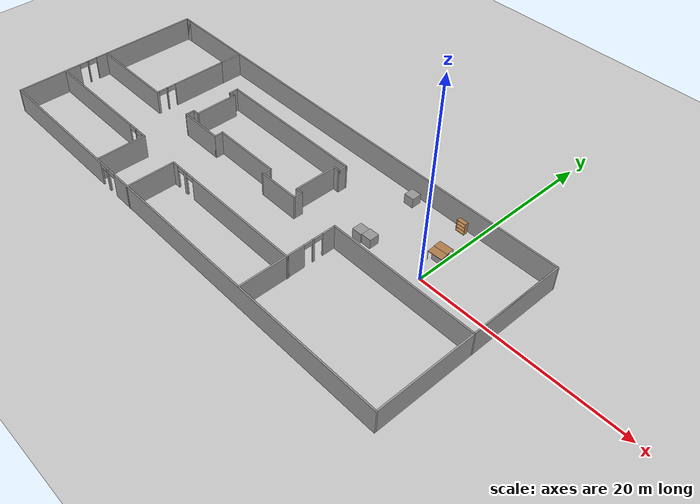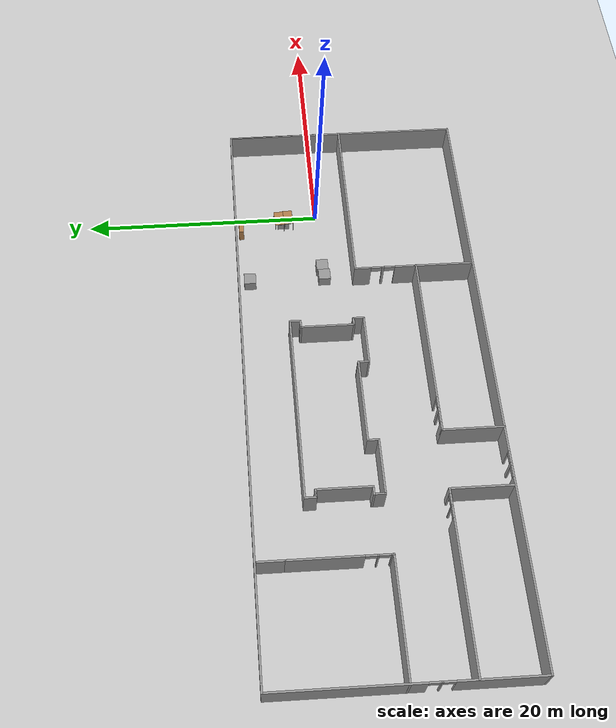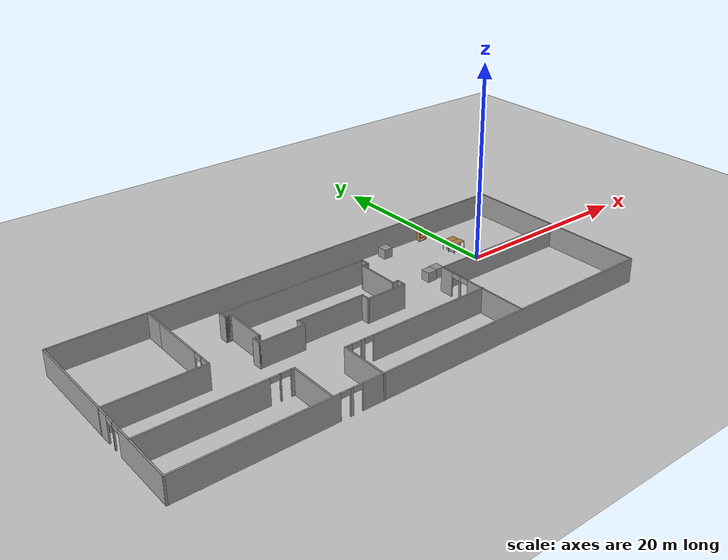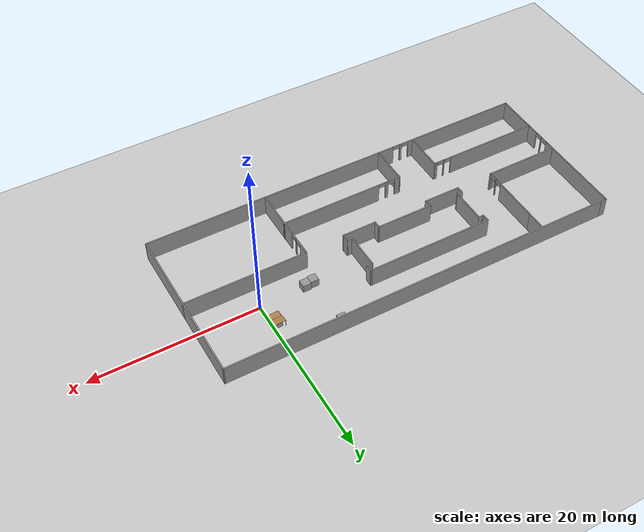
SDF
<sdf version="1.6">
 <world name="default">
  <model name="ground_plane">
   <static>1</static>
   <link name="link">
    <collision name="collision">
     <geometry><plane><normal>0 0 1</normal><size>100 100</size></plane></geometry>
     <surface><friction><ode><mu>100</mu><mu2>50</mu2></ode></friction></surface>
    </collision>
    <visual name="visual">
     <cast_shadows>0</cast_shadows>
     <geometry><plane><normal>0 0 1</normal><size>100 100</size></plane></geometry>
     <material>
      <script><uri>file://media/materials/scripts/gazebo.material</uri><name>Gazebo/Grey</name></script>
     </material>
    </visual>
   </link>
  </model>
  <model name="table_7">
   <static>0</static>
   <link name="link">
    <collision name="surface">
     <pose>0 0 1 0 -0 0</pose>
     <geometry><box><size>1.5 0.8 0.03</size></box></geometry>
     <surface><friction><ode><mu>0.6</mu><mu2>0.6</mu2></ode></friction></surface>
    </collision>
    <visual name="visual1">
     <pose>0 0 1 0 -0 0</pose>
     <geometry><box><size>1.4 0.8 0.04</size></box></geometry>
     <material>
      <script><uri>file://media/materials/scripts/gazebo.material</uri><name>Gazebo/Wood</name></script>
     </material>
    </visual>
    <collision name="front_left_leg">
     <pose>0.68 0.38 0.5 0 -0 0</pose>
     <geometry><cylinder><radius>0.02</radius><length>1</length></cylinder></geometry>
    </collision>
    <visual name="front_left_leg">
     <pose>0.68 0.38 0.5 0 -0 0</pose>
     <geometry><cylinder><radius>0.02</radius><length>1</length></cylinder></geometry>
     <material>
      <script><uri>file://media/materials/scripts/gazebo.material</uri><name>Gazebo/Grey</name></script>
     </material>
    </visual>
    <collision name="front_right_leg">
     <pose>0.68 -0.38 0.5 0 -0 0</pose>
     <geometry><cylinder><radius>0.02</radius><length>1</length></cylinder></geometry>
    </collision>
    <visual name="front_right_leg">
     <pose>0.68 -0.38 0.5 0 -0 0</pose>
     <geometry><cylinder><radius>0.02</radius><length>1</length></cylinder></geometry>
     <material>
      <script><uri>file://media/materials/scripts/gazebo.material</uri><name>Gazebo/Grey</name></script>
     </material>
    </visual>
    <collision name="back_right_leg">
     <pose>-0.68 -0.38 0.5 0 -0 0</pose>
     <geometry><cylinder><radius>0.02</radius><length>1</length></cylinder></geometry>
    </collision>
    <visual name="back_right_leg">
     <pose>-0.68 -0.38 0.5 0 -0 0</pose>
     <geometry><cylinder><radius>0.02</radius><length>1</length></cylinder></geometry>
     <material>
      <script><uri>file://media/materials/scripts/gazebo.material</uri><name>Gazebo/Grey</name></script>
     </material>
    </visual>
    <collision name="back_left_leg">
     <pose>-0.68 0.38 0.5 0 -0 0</pose>
     <geometry><cylinder><radius>0.02</radius><length>1</length></cylinder></geometry>
    </collision>
    <visual name="back_left_leg">
     <pose>-0.68 0.38 0.5 0 -0 0</pose>
     <geometry><cylinder><radius>0.02</radius><length>1</length></cylinder></geometry>
     <material>
      <script><uri>file://media/materials/scripts/gazebo.material</uri><name>Gazebo/Grey</name></script>
     </material>
    </visual>
    <inertial>
     <inertia><ixx>1</ixx><ixy>0</ixy><ixz>0</ixz><iyy>1</iyy><iyz>0</iyz><izz>1</izz></inertia>
     <mass>1</mass>
    </inertial>
   </link>
   <pose>-0.539841 3.25305 0.014986 0 9e-06 0.054108</pose>
  </model>
  <model name="table_7_clone">
   <static>0</static>
   <link name="link">
    <collision name="surface">
     <pose>0 0 1 0 -0 0</pose>
     <geometry><box><size>1.5 0.8 0.03</size></box></geometry>
     <surface><friction><ode><mu>0.6</mu><mu2>0.6</mu2></ode></friction></surface>
    </collision>
    <visual name="visual1">
     <pose>0 0 1 0 -0 0</pose>
     <geometry><box><size>1.4 0.8 0.04</size></box></geometry>
     <material>
      <script><uri>file://media/materials/scripts/gazebo.material</uri><name>Gazebo/Wood</name></script>
     </material>
    </visual>
    <collision name="front_left_leg">
     <pose>0.68 0.38 0.5 0 -0 0</pose>
     <geometry><cylinder><radius>0.02</radius><length>1</length></cylinder></geometry>
    </collision>
    <visual name="front_left_leg">
     <pose>0.68 0.38 0.5 0 -0 0</pose>
     <geometry><cylinder><radius>0.02</radius><length>1</length></cylinder></geometry>
     <material>
      <script><uri>file://media/materials/scripts/gazebo.material</uri><name>Gazebo/Grey</name></script>
     </material>
    </visual>
    <collision name="front_right_leg">
     <pose>0.68 -0.38 0.5 0 -0 0</pose>
     <geometry><cylinder><radius>0.02</radius><length>1</length></cylinder></geometry>
    </collision>
    <visual name="front_right_leg">
     <pose>0.68 -0.38 0.5 0 -0 0</pose>
     <geometry><cylinder><radius>0.02</radius><length>1</length></cylinder></geometry>
     <material>
      <script><uri>file://media/materials/scripts/gazebo.material</uri><name>Gazebo/Grey</name></script>
     </material>
    </visual>
    <collision name="back_right_leg">
     <pose>-0.68 -0.38 0.5 0 -0 0</pose>
     <geometry><cylinder><radius>0.02</radius><length>1</length></cylinder></geometry>
    </collision>
    <visual name="back_right_leg">
     <pose>-0.68 -0.38 0.5 0 -0 0</pose>
     <geometry><cylinder><radius>0.02</radius><length>1</length></cylinder></geometry>
     <material>
      <script><uri>file://media/materials/scripts/gazebo.material</uri><name>Gazebo/Grey</name></script>
     </material>
    </visual>
    <collision name="back_left_leg">
     <pose>-0.68 0.38 0.5 0 -0 0</pose>
     <geometry><cylinder><radius>0.02</radius><length>1</length></cylinder></geometry>
    </collision>
    <visual name="back_left_leg">
     <pose>-0.68 0.38 0.5 0 -0 0</pose>
     <geometry><cylinder><radius>0.02</radius><length>1</length></cylinder></geometry>
     <material>
      <script><uri>file://media/materials/scripts/gazebo.material</uri><name>Gazebo/Grey</name></script>
     </material>
    </visual>
    <inertial>
     <inertia><ixx>1</ixx><ixy>0</ixy><ixz>0</ixz><iyy>1</iyy><iyz>0</iyz><izz>1</izz></inertia>
     <mass>1</mass>
    </inertial>
   </link>
   <pose>-0.46547 2.45586 0.015004 9e-05 6e-06 0.054265</pose>
  </model>
  <model name="ball_bearing">
   <link name="link">
    <pose>0 0 0.003 0 -0 0</pose>
    <inertial>
     <mass>0.0011</mass>
     <inertia>
      <ixx>3.96e-09</ixx>
      <ixy>0</ixy>
      <ixz>0</ixz>
      <iyy>3.96e-09</iyy>
      <iyz>0</iyz>
      <izz>3.96e-09</izz>
     </inertia>
    </inertial>
    <collision name="collision">
     <geometry><sphere><radius>0.003</radius></sphere></geometry>
     <surface>
      <contact>
       <poissons_ratio>0.305</poissons_ratio>
       <elastic_modulus>2e+11</elastic_modulus>
       <ode><kp>100000</kp><kd>100</kd><max_vel>100</max_vel><min_depth>0.001</min_depth></ode>
      </contact>
      <friction>
       <torsional>
        <coefficient>1</coefficient>
        <use_patch_radius>0</use_patch_radius>
        <surface_radius>0.01</surface_radius>
       </torsional>
      </friction>
     </surface>
    </collision>
    <visual name="visual">
     <geometry><sphere><radius>0.003</radius></sphere></geometry>
     <material>
      <script><uri>file://media/materials/scripts/gazebo.material</uri><name>Gazebo/Grey</name></script>
     </material>
    </visual>
    <velocity_decay><linear>0</linear><angular>0.005</angular></velocity_decay>
   </link>
   <pose>-2.7544 0.153003 -0.001 0 -0 0</pose>
  </model>
  <model name="unit_box_2">
   <pose>-6.72416 6.13968 0.499995 0 1e-05 0</pose>
   <link name="link">
    <inertial>
     <mass>1</mass>
     <inertia>
      <ixx>0.166667</ixx>
      <ixy>0</ixy>
      <ixz>0</ixz>
      <iyy>0.166667</iyy>
      <iyz>0</iyz>
      <izz>0.166667</izz>
     </inertia>
    </inertial>
    <collision name="collision"><geometry><box><size>1 1 1</size></box></geometry></collision>
    <visual name="visual">
     <geometry><box><size>1 1 1</size></box></geometry>
     <material>
      <script><name>Gazebo/Grey</name><uri>file://media/materials/scripts/gazebo.material</uri></script>
     </material>
    </visual>
   </link>
  </model>
  <model name="unit_box_4">
   <pose>-6.61274 -0.247942 0.499995 0 -1e-05 0.000326</pose>
   <link name="link">
    <inertial>
     <mass>1</mass>
     <inertia>
      <ixx>0.166667</ixx>
      <ixy>0</ixy>
      <ixz>0</ixz>
      <iyy>0.166667</iyy>
      <iyz>0</iyz>
      <izz>0.166667</izz>
     </inertia>
    </inertial>
    <collision name="collision"><geometry><box><size>1 1 1</size></box></geometry></collision>
    <visual name="visual">
     <geometry><box><size>1 1 1</size></box></geometry>
     <material>
      <script><name>Gazebo/Grey</name><uri>file://media/materials/scripts/gazebo.material</uri></script>
     </material>
    </visual>
   </link>
  </model>
  <model name="unit_box_5">
   <pose>-5.61275 -0.138844 0.499995 -0 1e-05 0.000322</pose>
   <link name="link">
    <inertial>
     <mass>1</mass>
     <inertia>
      <ixx>0.166667</ixx>
      <ixy>0</ixy>
      <ixz>0</ixz>
      <iyy>0.166667</iyy>
      <iyz>0</iyz>
      <izz>0.166667</izz>
     </inertia>
    </inertial>
    <collision name="collision"><geometry><box><size>1 1 1</size></box></geometry></collision>
    <visual name="visual">
     <geometry><box><size>1 1 1</size></box></geometry>
     <material>
      <script><name>Gazebo/Grey</name><uri>file://media/materials/scripts/gazebo.material</uri></script>
     </material>
    </visual>
   </link>
  </model>
  <model name="unit_box_6">
   <pose>-0.474664 2.87732 0.499997 0 6e-06 0.005855</pose>
   <link name="link">
    <inertial>
     <mass>1</mass>
     <inertia>
      <ixx>0.166667</ixx>
      <ixy>0</ixy>
      <ixz>0</ixz>
      <iyy>0.166667</iyy>
      <iyz>0</iyz>
      <izz>0.166667</izz>
     </inertia>
    </inertial>
    <collision name="collision"><geometry><box><size>1 1 1</size></box></geometry></collision>
    <visual name="visual">
     <geometry><box><size>1 1 1</size></box></geometry>
     <material>
      <script><name>Gazebo/Grey</name><uri>file://media/materials/scripts/gazebo.material</uri></script>
     </material>
    </visual>
   </link>
  </model>
  <model name="bookshelf_0">
   <static>1</static>
   <link name="link">
    <inertial><mass>1</mass></inertial>
    <collision name="back">
     <pose>0 0.005 0.6 0 -0 0</pose>
     <geometry><box><size>0.9 0.01 1.2</size></box></geometry>
    </collision>
    <visual name="visual1">
     <pose>0 0.005 0.6 0 -0 0</pose>
     <geometry><box><size>0.9 0.01 1.2</size></box></geometry>
     <material>
      <script><uri>file://media/materials/scripts/gazebo.material</uri><name>Gazebo/Wood</name></script>
     </material>
    </visual>
    <collision name="left_side">
     <pose>0.45 -0.195 0.6 0 -0 0</pose>
     <geometry><box><size>0.02 0.4 1.2</size></box></geometry>
    </collision>
    <visual name="visual2">
     <pose>0.45 -0.195 0.6 0 -0 0</pose>
     <geometry><box><size>0.02 0.4 1.2</size></box></geometry>
     <material>
      <script><uri>file://media/materials/scripts/gazebo.material</uri><name>Gazebo/Wood</name></script>
     </material>
    </visual>
    <collision name="right_side">
     <pose>-0.45 -0.195 0.6 0 -0 0</pose>
     <geometry><box><size>0.02 0.4 1.2</size></box></geometry>
    </collision>
    <visual name="visual3">
     <pose>-0.45 -0.195 0.6 0 -0 0</pose>
     <geometry><box><size>0.02 0.4 1.2</size></box></geometry>
     <material>
      <script><uri>file://media/materials/scripts/gazebo.material</uri><name>Gazebo/Wood</name></script>
     </material>
    </visual>
    <collision name="bottom">
     <pose>0 -0.195 0.03 0 -0 0</pose>
     <geometry><box><size>0.88 0.4 0.06</size></box></geometry>
    </collision>
    <visual name="visual4">
     <pose>0 -0.195 0.03 0 -0 0</pose>
     <geometry><box><size>0.88 0.4 0.06</size></box></geometry>
     <material>
      <script><uri>file://media/materials/scripts/gazebo.material</uri><name>Gazebo/Wood</name></script>
     </material>
    </visual>
    <collision name="top">
     <pose>0 -0.195 1.19 0 -0 0</pose>
     <geometry><box><size>0.88 0.4 0.02</size></box></geometry>
    </collision>
    <visual name="visual5">
     <pose>0 -0.195 1.19 0 -0 0</pose>
     <geometry><box><size>0.88 0.4 0.02</size></box></geometry>
     <material>
      <script><uri>file://media/materials/scripts/gazebo.material</uri><name>Gazebo/Wood</name></script>
     </material>
    </visual>
    <collision name="low_shelf">
     <pose>0 -0.195 0.43 0 -0 0</pose>
     <geometry><box><size>0.88 0.4 0.02</size></box></geometry>
    </collision>
    <visual name="visual6">
     <pose>0 -0.195 0.43 0 -0 0</pose>
     <geometry><box><size>0.88 0.4 0.02</size></box></geometry>
     <material>
      <script><uri>file://media/materials/scripts/gazebo.material</uri><name>Gazebo/Wood</name></script>
     </material>
    </visual>
    <collision name="high_shelf">
     <pose>0 -0.195 0.8 0 -0 0</pose>
     <geometry><box><size>0.88 0.4 0.02</size></box></geometry>
    </collision>
    <visual name="visual7">
     <pose>0 -0.195 0.8 0 -0 0</pose>
     <geometry><box><size>0.88 0.4 0.02</size></box></geometry>
     <material>
      <script><uri>file://media/materials/scripts/gazebo.material</uri><name>Gazebo/Wood</name></script>
     </material>
    </visual>
   </link>
   <pose>-1.47415 6.82616 0 0 -0 0</pose>
  </model>
  <model name="build1_1">
   <pose>-16.7833 -2.82215 0 0 -0 0</pose>
   <link name="Wall_0">
    <collision name="Wall_0_Collision">
     <geometry><box><size>48.75 0.15 2.5</size></box></geometry>
     <pose>0 0 1.25 0 -0 0</pose>
    </collision>
    <visual name="Wall_0_Visual">
     <pose>0 0 1.25 0 -0 0</pose>
     <geometry><box><size>48.75 0.15 2.5</size></box></geometry>
     <material>
      <script><uri>file://media/materials/scripts/gazebo.material</uri><name>Gazebo/Grey</name></script>
      <ambient>1 1 1 1</ambient>
     </material>
    </visual>
    <pose>0.128151 9.93761 0 0 -0 0</pose>
   </link>
   <link name="Wall_10">
    <collision name="Wall_10_Collision">
     <geometry><box><size>0.75 0.15 2.5</size></box></geometry>
     <pose>0 0 1.25 0 -0 0</pose>
    </collision>
    <visual name="Wall_10_Visual">
     <pose>0 0 1.25 0 -0 0</pose>
     <geometry><box><size>0.75 0.15 2.5</size></box></geometry>
     <material>
      <script><uri>file://media/materials/scripts/gazebo.material</uri><name>Gazebo/Grey</name></script>
      <ambient>1 1 1 1</ambient>
     </material>
    </visual>
    <pose>-24.1218 9.93761 0 0 -0 0</pose>
   </link>
   <link name="Wall_101">
    <collision name="Wall_101_Collision">
     <geometry><box><size>10 0.15 2.5</size></box></geometry>
     <pose>0 0 1.25 0 -0 0</pose>
    </collision>
    <visual name="Wall_101_Visual">
     <pose>0 0 1.25 0 -0 0</pose>
     <geometry><box><size>10 0.15 2.5</size></box></geometry>
     <material>
      <script><uri>file://media/materials/scripts/gazebo.material</uri><name>Gazebo/Grey</name></script>
      <ambient>1 1 1 1</ambient>
     </material>
    </visual>
    <pose>24.4281 5.01261 0 0 0 -1.5708</pose>
   </link>
   <link name="Wall_102">
    <collision name="Wall_102_Collision">
     <geometry><box><size>15 0.15 2.5</size></box></geometry>
     <pose>0 0 1.25 0 -0 0</pose>
    </collision>
    <visual name="Wall_102_Visual">
     <pose>0 0 1.25 0 -0 0</pose>
     <geometry><box><size>15 0.15 2.5</size></box></geometry>
     <material>
      <script><uri>file://media/materials/scripts/gazebo.material</uri><name>Gazebo/Grey</name></script>
      <ambient>1 1 1 1</ambient>
     </material>
    </visual>
    <pose>17.0032 0.087612 0 0 -0 3.14159</pose>
   </link>
   <link name="Wall_103">
    <pose>9.57815 -2.46239 0 0 0 -1.5708</pose>
    <visual name="Wall_103_Visual_0">
     <pose>-1.90662 0 1.25 0 -0 0</pose>
     <geometry><box><size>1.43676 0.15 2.5</size></box></geometry>
     <material>
      <script><uri>file://media/materials/scripts/gazebo.material</uri><name>Gazebo/Grey</name></script>
      <ambient>1 1 1 1</ambient>
     </material>
    </visual>
    <collision name="Wall_103_Collision_0">
     <geometry><box><size>1.43676 0.15 2.5</size></box></geometry>
     <pose>-1.90662 0 1.25 0 -0 0</pose>
    </collision>
    <visual name="Wall_103_Visual_1">
     <pose>-0.188989 0 1.25 0 -0 0</pose>
     <geometry><box><size>0.198503 0.15 2.5</size></box></geometry>
     <material>
      <script><uri>file://media/materials/scripts/gazebo.material</uri><name>Gazebo/Grey</name></script>
      <ambient>1 1 1 1</ambient>
     </material>
    </visual>
    <collision name="Wall_103_Collision_1">
     <geometry><box><size>0.198503 0.15 2.5</size></box></geometry>
     <pose>-0.188989 0 1.25 0 -0 0</pose>
    </collision>
    <visual name="Wall_103_Visual_2">
     <pose>1.71763 0 1.25 0 -0 0</pose>
     <geometry><box><size>1.81474 0.15 2.5</size></box></geometry>
     <material>
      <script><uri>file://media/materials/scripts/gazebo.material</uri><name>Gazebo/Grey</name></script>
      <ambient>1 1 1 1</ambient>
     </material>
    </visual>
    <collision name="Wall_103_Collision_2">
     <geometry><box><size>1.81474 0.15 2.5</size></box></geometry>
     <pose>1.71763 0 1.25 0 -0 0</pose>
    </collision>
    <visual name="Wall_103_Visual_3">
     <pose>-0.73824 0 2.25 0 -0 0</pose>
     <geometry><box><size>0.9 0.15 0.5</size></box></geometry>
     <material>
      <script><uri>file://media/materials/scripts/gazebo.material</uri><name>Gazebo/Grey</name></script>
      <ambient>1 1 1 1</ambient>
     </material>
    </visual>
    <collision name="Wall_103_Collision_3">
     <geometry><box><size>0.9 0.15 0.5</size></box></geometry>
     <pose>-0.73824 0 2.25 0 -0 0</pose>
    </collision>
    <visual name="Wall_103_Visual_4">
     <pose>0.360263 0 2.25 0 -0 0</pose>
     <geometry><box><size>0.9 0.15 0.5</size></box></geometry>
     <material>
      <script><uri>file://media/materials/scripts/gazebo.material</uri><name>Gazebo/Grey</name></script>
      <ambient>1 1 1 1</ambient>
     </material>
    </visual>
    <collision name="Wall_103_Collision_4">
     <geometry><box><size>0.9 0.15 0.5</size></box></geometry>
     <pose>0.360263 0 2.25 0 -0 0</pose>
    </collision>
   </link>
   <link name="Wall_105">
    <pose>1.96209 -5.08761 0 0 -0 0</pose>
    <visual name="Wall_105_Visual_0">
     <pose>-7.37124 0 1.25 0 -0 0</pose>
     <geometry><box><size>0.757518 0.15 2.5</size></box></geometry>
     <material>
      <script><uri>file://media/materials/scripts/gazebo.material</uri><name>Gazebo/Grey</name></script>
      <ambient>1 1 1 1</ambient>
     </material>
    </visual>
    <collision name="Wall_105_Collision_0">
     <geometry><box><size>0.757518 0.15 2.5</size></box></geometry>
     <pose>-7.37124 0 1.25 0 -0 0</pose>
    </collision>
    <visual name="Wall_105_Visual_1">
     <pose>-5.91186 0 1.25 0 -0 0</pose>
     <geometry><box><size>0.361245 0.15 2.5</size></box></geometry>
     <material>
      <script><uri>file://media/materials/scripts/gazebo.material</uri><name>Gazebo/Grey</name></script>
      <ambient>1 1 1 1</ambient>
     </material>
    </visual>
    <collision name="Wall_105_Collision_1">
     <geometry><box><size>0.361245 0.15 2.5</size></box></geometry>
     <pose>-5.91186 0 1.25 0 -0 0</pose>
    </collision>
    <visual name="Wall_105_Visual_2">
     <pose>1.45938 0 1.25 0 -0 0</pose>
     <geometry><box><size>12.5812 0.15 2.5</size></box></geometry>
     <material>
      <script><uri>file://media/materials/scripts/gazebo.material</uri><name>Gazebo/Grey</name></script>
      <ambient>1 1 1 1</ambient>
     </material>
    </visual>
    <collision name="Wall_105_Collision_2">
     <geometry><box><size>12.5812 0.15 2.5</size></box></geometry>
     <pose>1.45938 0 1.25 0 -0 0</pose>
    </collision>
    <visual name="Wall_105_Visual_3">
     <pose>-6.54248 0 2.25 0 -0 0</pose>
     <geometry><box><size>0.9 0.15 0.5</size></box></geometry>
     <material>
      <script><uri>file://media/materials/scripts/gazebo.material</uri><name>Gazebo/Grey</name></script>
      <ambient>1 1 1 1</ambient>
     </material>
    </visual>
    <collision name="Wall_105_Collision_3">
     <geometry><box><size>0.9 0.15 0.5</size></box></geometry>
     <pose>-6.54248 0 2.25 0 -0 0</pose>
    </collision>
    <visual name="Wall_105_Visual_4">
     <pose>-5.28124 0 2.25 0 -0 0</pose>
     <geometry><box><size>0.9 0.15 0.5</size></box></geometry>
     <material>
      <script><uri>file://media/materials/scripts/gazebo.material</uri><name>Gazebo/Grey</name></script>
      <ambient>1 1 1 1</ambient>
     </material>
    </visual>
    <collision name="Wall_105_Collision_4">
     <geometry><box><size>0.9 0.15 0.5</size></box></geometry>
     <pose>-5.28124 0 2.25 0 -0 0</pose>
    </collision>
   </link>
   <link name="Wall_14">
    <collision name="Wall_14_Collision">
     <geometry><box><size>9.25 0.15 2.5</size></box></geometry>
     <pose>0 0 1.25 0 -0 0</pose>
    </collision>
    <visual name="Wall_14_Visual">
     <pose>0 0 1.25 0 -0 0</pose>
     <geometry><box><size>9.25 0.15 2.5</size></box></geometry>
     <material>
      <script><uri>file://media/materials/scripts/gazebo.material</uri><name>Gazebo/Grey</name></script>
      <ambient>1 1 1 1</ambient>
     </material>
    </visual>
    <pose>-19.8782 -0.176763 0 0 -0 3.14159</pose>
   </link>
   <link name="Wall_16">
    <pose>-15.3282 3.74824 0 0 -0 1.5708</pose>
    <visual name="Wall_16_Visual_0">
     <pose>-3.87767 0 1.25 0 -0 0</pose>
     <geometry><box><size>0.244662 0.15 2.5</size></box></geometry>
     <material>
      <script><uri>file://media/materials/scripts/gazebo.material</uri><name>Gazebo/Grey</name></script>
      <ambient>1 1 1 1</ambient>
     </material>
    </visual>
    <collision name="Wall_16_Collision_0">
     <geometry><box><size>0.244662 0.15 2.5</size></box></geometry>
     <pose>-3.87767 0 1.25 0 -0 0</pose>
    </collision>
    <visual name="Wall_16_Visual_1">
     <pose>-2.79773 0 1.25 0 -0 0</pose>
     <geometry><box><size>0.11521 0.15 2.5</size></box></geometry>
     <material>
      <script><uri>file://media/materials/scripts/gazebo.material</uri><name>Gazebo/Grey</name></script>
      <ambient>1 1 1 1</ambient>
     </material>
    </visual>
    <collision name="Wall_16_Collision_1">
     <geometry><box><size>0.11521 0.15 2.5</size></box></geometry>
     <pose>-2.79773 0 1.25 0 -0 0</pose>
    </collision>
    <visual name="Wall_16_Visual_2">
     <pose>1.07994 0 1.25 0 -0 0</pose>
     <geometry><box><size>5.84013 0.15 2.5</size></box></geometry>
     <material>
      <script><uri>file://media/materials/scripts/gazebo.material</uri><name>Gazebo/Grey</name></script>
      <ambient>1 1 1 1</ambient>
     </material>
    </visual>
    <collision name="Wall_16_Collision_2">
     <geometry><box><size>5.84013 0.15 2.5</size></box></geometry>
     <pose>1.07994 0 1.25 0 -0 0</pose>
    </collision>
    <visual name="Wall_16_Visual_3">
     <pose>-3.30534 0 2.25 0 -0 0</pose>
     <geometry><box><size>0.9 0.15 0.5</size></box></geometry>
     <material>
      <script><uri>file://media/materials/scripts/gazebo.material</uri><name>Gazebo/Grey</name></script>
      <ambient>1 1 1 1</ambient>
     </material>
    </visual>
    <collision name="Wall_16_Collision_3">
     <geometry><box><size>0.9 0.15 0.5</size></box></geometry>
     <pose>-3.30534 0 2.25 0 -0 0</pose>
    </collision>
    <visual name="Wall_16_Visual_4">
     <pose>-2.29013 0 2.25 0 -0 0</pose>
     <geometry><box><size>0.9 0.15 0.5</size></box></geometry>
     <material>
      <script><uri>file://media/materials/scripts/gazebo.material</uri><name>Gazebo/Grey</name></script>
      <ambient>1 1 1 1</ambient>
     </material>
    </visual>
    <collision name="Wall_16_Collision_4">
     <geometry><box><size>0.9 0.15 0.5</size></box></geometry>
     <pose>-2.29013 0 2.25 0 -0 0</pose>
    </collision>
   </link>
   <link name="Wall_19">
    <collision name="Wall_19_Collision">
     <geometry><box><size>2.25 0.15 2.5</size></box></geometry>
     <pose>0 0 1.25 0 -0 0</pose>
    </collision>
    <visual name="Wall_19_Visual">
     <pose>0 0 1.25 0 -0 0</pose>
     <geometry><box><size>2.25 0.15 2.5</size></box></geometry>
     <material>
      <script><uri>file://media/materials/scripts/gazebo.material</uri><name>Gazebo/Grey</name></script>
      <ambient>1 1 1 1</ambient>
     </material>
    </visual>
    <pose>-15.3282 8.72324 0 0 -0 1.5708</pose>
   </link>
   <link name="Wall_21">
    <pose>-17.4625 -4.93332 0 0 -0 0</pose>
    <visual name="Wall_21_Visual_0">
     <pose>-1.1775 0 1.25 0 -0 0</pose>
     <geometry><box><size>11.645 0.15 2.5</size></box></geometry>
     <material>
      <script><uri>file://media/materials/scripts/gazebo.material</uri><name>Gazebo/Grey</name></script>
      <ambient>1 1 1 1</ambient>
     </material>
    </visual>
    <collision name="Wall_21_Collision_0">
     <geometry><box><size>11.645 0.15 2.5</size></box></geometry>
     <pose>-1.1775 0 1.25 0 -0 0</pose>
    </collision>
    <visual name="Wall_21_Visual_1">
     <pose>5.6026 0 1.25 0 -0 0</pose>
     <geometry><box><size>0.115209 0.15 2.5</size></box></geometry>
     <material>
      <script><uri>file://media/materials/scripts/gazebo.material</uri><name>Gazebo/Grey</name></script>
      <ambient>1 1 1 1</ambient>
     </material>
    </visual>
    <collision name="Wall_21_Collision_1">
     <geometry><box><size>0.115209 0.15 2.5</size></box></geometry>
     <pose>5.6026 0 1.25 0 -0 0</pose>
    </collision>
    <visual name="Wall_21_Visual_2">
     <pose>6.7801 0 1.25 0 -0 0</pose>
     <geometry><box><size>0.439798 0.15 2.5</size></box></geometry>
     <material>
      <script><uri>file://media/materials/scripts/gazebo.material</uri><name>Gazebo/Grey</name></script>
      <ambient>1 1 1 1</ambient>
     </material>
    </visual>
    <collision name="Wall_21_Collision_2">
     <geometry><box><size>0.439798 0.15 2.5</size></box></geometry>
     <pose>6.7801 0 1.25 0 -0 0</pose>
    </collision>
    <visual name="Wall_21_Visual_3">
     <pose>5.09499 0 2.25 0 -0 0</pose>
     <geometry><box><size>0.9 0.15 0.5</size></box></geometry>
     <material>
      <script><uri>file://media/materials/scripts/gazebo.material</uri><name>Gazebo/Grey</name></script>
      <ambient>1 1 1 1</ambient>
     </material>
    </visual>
    <collision name="Wall_21_Collision_3">
     <geometry><box><size>0.9 0.15 0.5</size></box></geometry>
     <pose>5.09499 0 2.25 0 -0 0</pose>
    </collision>
    <visual name="Wall_21_Visual_4">
     <pose>6.1102 0 2.25 0 -0 0</pose>
     <geometry><box><size>0.9 0.15 0.5</size></box></geometry>
     <material>
      <script><uri>file://media/materials/scripts/gazebo.material</uri><name>Gazebo/Grey</name></script>
      <ambient>1 1 1 1</ambient>
     </material>
    </visual>
    <collision name="Wall_21_Collision_4">
     <geometry><box><size>0.9 0.15 0.5</size></box></geometry>
     <pose>6.1102 0 2.25 0 -0 0</pose>
    </collision>
   </link>
   <link name="Wall_22">
    <collision name="Wall_22_Collision">
     <geometry><box><size>5 0.15 2.5</size></box></geometry>
     <pose>0 0 1.25 0 -0 0</pose>
    </collision>
    <visual name="Wall_22_Visual">
     <pose>0 0 1.25 0 -0 0</pose>
     <geometry><box><size>5 0.15 2.5</size></box></geometry>
     <material>
      <script><uri>file://media/materials/scripts/gazebo.material</uri><name>Gazebo/Grey</name></script>
      <ambient>1 1 1 1</ambient>
     </material>
    </visual>
    <pose>-10.5375 -7.35832 0 0 0 -1.5708</pose>
   </link>
   <link name="Wall_24">
    <collision name="Wall_24_Collision">
     <geometry><box><size>5 0.15 2.5</size></box></geometry>
     <pose>0 0 1.25 0 -0 0</pose>
    </collision>
    <visual name="Wall_24_Visual">
     <pose>0 0 1.25 0 -0 0</pose>
     <geometry><box><size>5 0.15 2.5</size></box></geometry>
     <material>
      <script><uri>file://media/materials/scripts/gazebo.material</uri><name>Gazebo/Grey</name></script>
      <ambient>1 1 1 1</ambient>
     </material>
    </visual>
    <pose>-5.71291 -7.51261 0 0 -0 1.5708</pose>
   </link>
   <link name="Wall_26">
    <collision name="Wall_26_Collision">
     <geometry><box><size>5 0.15 2.5</size></box></geometry>
     <pose>0 0 1.25 0 -0 0</pose>
    </collision>
    <visual name="Wall_26_Visual">
     <pose>0 0 1.25 0 -0 0</pose>
     <geometry><box><size>5 0.15 2.5</size></box></geometry>
     <material>
      <script><uri>file://media/materials/scripts/gazebo.material</uri><name>Gazebo/Grey</name></script>
      <ambient>1 1 1 1</ambient>
     </material>
    </visual>
    <pose>9.57927 -7.43124 0 0 0 -1.5708</pose>
   </link>
   <link name="Wall_69">
    <collision name="Wall_69_Collision">
     <geometry><box><size>4.5 0.15 2.5</size></box></geometry>
     <pose>0 0 1.25 0 -0 0</pose>
    </collision>
    <visual name="Wall_69_Visual">
     <pose>0 0 1.25 0 -0 0</pose>
     <geometry><box><size>4.5 0.15 2.5</size></box></geometry>
     <material>
      <script><uri>file://media/materials/scripts/gazebo.material</uri><name>Gazebo/Grey</name></script>
      <ambient>1 1 1 1</ambient>
     </material>
    </visual>
    <pose>-8.40817 -0.110852 0 0 -0 0</pose>
   </link>
   <link name="Wall_7">
    <collision name="Wall_7_Collision">
     <geometry><box><size>20 0.15 2.5</size></box></geometry>
     <pose>0 0 1.25 0 -0 0</pose>
    </collision>
    <visual name="Wall_7_Visual">
     <pose>0 0 1.25 0 -0 0</pose>
     <geometry><box><size>20 0.15 2.5</size></box></geometry>
     <material>
      <script><uri>file://media/materials/scripts/gazebo.material</uri><name>Gazebo/Grey</name></script>
      <ambient>1 1 1 1</ambient>
     </material>
    </visual>
    <pose>24.4281 0.012612 0 0 0 -1.5708</pose>
   </link>
   <link name="Wall_70">
    <collision name="Wall_70_Collision">
     <geometry><box><size>1 0.15 2.5</size></box></geometry>
     <pose>0 0 1.25 0 -0 0</pose>
    </collision>
    <visual name="Wall_70_Visual">
     <pose>0 0 1.25 0 -0 0</pose>
     <geometry><box><size>1 0.15 2.5</size></box></geometry>
     <material>
      <script><uri>file://media/materials/scripts/gazebo.material</uri><name>Gazebo/Grey</name></script>
      <ambient>1 1 1 1</ambient>
     </material>
    </visual>
    <pose>-6.23316 0.314148 0 0 -0 1.5708</pose>
   </link>
   <link name="Wall_78">
    <collision name="Wall_78_Collision">
     <geometry><box><size>0.75 0.15 2.5</size></box></geometry>
     <pose>0 0 1.25 0 -0 0</pose>
    </collision>
    <visual name="Wall_78_Visual">
     <pose>0 0 1.25 0 -0 0</pose>
     <geometry><box><size>0.75 0.15 2.5</size></box></geometry>
     <material>
      <script><uri>file://media/materials/scripts/gazebo.material</uri><name>Gazebo/Grey</name></script>
      <ambient>1 1 1 1</ambient>
     </material>
    </visual>
    <pose>4.41683 0.739148 0 0 -0 3.14159</pose>
   </link>
   <link name="Wall_79">
    <collision name="Wall_79_Collision">
     <geometry><box><size>4.5 0.15 2.5</size></box></geometry>
     <pose>0 0 1.25 0 -0 0</pose>
    </collision>
    <visual name="Wall_79_Visual">
     <pose>0 0 1.25 0 -0 0</pose>
     <geometry><box><size>4.5 0.15 2.5</size></box></geometry>
     <material>
      <script><uri>file://media/materials/scripts/gazebo.material</uri><name>Gazebo/Grey</name></script>
      <ambient>1 1 1 1</ambient>
     </material>
    </visual>
    <pose>4.11684 2.91415 0 0 -0 1.5708</pose>
   </link>
   <link name="Wall_8">
    <pose>0.003151 -9.91239 0 0 -0 3.14159</pose>
    <visual name="Wall_8_Visual_0">
     <pose>-8.35572 0 1.25 0 -0 0</pose>
     <geometry><box><size>32.2886 0.15 2.5</size></box></geometry>
     <material>
      <script><uri>file://media/materials/scripts/gazebo.material</uri><name>Gazebo/Grey</name></script>
      <ambient>1 1 1 1</ambient>
     </material>
    </visual>
    <collision name="Wall_8_Collision_0">
     <geometry><box><size>32.2886 0.15 2.5</size></box></geometry>
     <pose>-8.35572 0 1.25 0 -0 0</pose>
    </collision>
    <visual name="Wall_8_Visual_1">
     <pose>8.82849 0 1.25 0 -0 0</pose>
     <geometry><box><size>0.279873 0.15 2.5</size></box></geometry>
     <material>
      <script><uri>file://media/materials/scripts/gazebo.material</uri><name>Gazebo/Grey</name></script>
      <ambient>1 1 1 1</ambient>
     </material>
    </visual>
    <collision name="Wall_8_Collision_1">
     <geometry><box><size>0.279873 0.15 2.5</size></box></geometry>
     <pose>8.82849 0 1.25 0 -0 0</pose>
    </collision>
    <visual name="Wall_8_Visual_2">
     <pose>17.1842 0 1.25 0 -0 0</pose>
     <geometry><box><size>14.6316 0.15 2.5</size></box></geometry>
     <material>
      <script><uri>file://media/materials/scripts/gazebo.material</uri><name>Gazebo/Grey</name></script>
      <ambient>1 1 1 1</ambient>
     </material>
    </visual>
    <collision name="Wall_8_Collision_2">
     <geometry><box><size>14.6316 0.15 2.5</size></box></geometry>
     <pose>17.1842 0 1.25 0 -0 0</pose>
    </collision>
    <visual name="Wall_8_Visual_3">
     <pose>8.23855 0 2.25 0 -0 0</pose>
     <geometry><box><size>0.9 0.15 0.5</size></box></geometry>
     <material>
      <script><uri>file://media/materials/scripts/gazebo.material</uri><name>Gazebo/Grey</name></script>
      <ambient>1 1 1 1</ambient>
     </material>
    </visual>
    <collision name="Wall_8_Collision_3">
     <geometry><box><size>0.9 0.15 0.5</size></box></geometry>
     <pose>8.23855 0 2.25 0 -0 0</pose>
    </collision>
    <visual name="Wall_8_Visual_4">
     <pose>9.41842 0 2.25 0 -0 0</pose>
     <geometry><box><size>0.9 0.15 0.5</size></box></geometry>
     <material>
      <script><uri>file://media/materials/scripts/gazebo.material</uri><name>Gazebo/Grey</name></script>
      <ambient>1 1 1 1</ambient>
     </material>
    </visual>
    <collision name="Wall_8_Collision_4">
     <geometry><box><size>0.9 0.15 0.5</size></box></geometry>
     <pose>9.41842 0 2.25 0 -0 0</pose>
    </collision>
   </link>
   <link name="Wall_80">
    <collision name="Wall_80_Collision">
     <geometry><box><size>0.75 0.15 2.5</size></box></geometry>
     <pose>0 0 1.25 0 -0 0</pose>
    </collision>
    <visual name="Wall_80_Visual">
     <pose>0 0 1.25 0 -0 0</pose>
     <geometry><box><size>0.75 0.15 2.5</size></box></geometry>
     <material>
      <script><uri>file://media/materials/scripts/gazebo.material</uri><name>Gazebo/Grey</name></script>
      <ambient>1 1 1 1</ambient>
     </material>
    </visual>
    <pose>4.41683 5.08915 0 0 -0 0</pose>
   </link>
   <link name="Wall_81">
    <collision name="Wall_81_Collision">
     <geometry><box><size>1 0.15 2.5</size></box></geometry>
     <pose>0 0 1.25 0 -0 0</pose>
    </collision>
    <visual name="Wall_81_Visual">
     <pose>0 0 1.25 0 -0 0</pose>
     <geometry><box><size>1 0.15 2.5</size></box></geometry>
     <material>
      <script><uri>file://media/materials/scripts/gazebo.material</uri><name>Gazebo/Grey</name></script>
      <ambient>1 1 1 1</ambient>
     </material>
    </visual>
    <pose>4.71683 5.51415 0 0 -0 1.5708</pose>
   </link>
   <link name="Wall_82">
    <collision name="Wall_82_Collision">
     <geometry><box><size>15.5 0.15 2.5</size></box></geometry>
     <pose>0 0 1.25 0 -0 0</pose>
    </collision>
    <visual name="Wall_82_Visual">
     <pose>0 0 1.25 0 -0 0</pose>
     <geometry><box><size>15.5 0.15 2.5</size></box></geometry>
     <material>
      <script><uri>file://media/materials/scripts/gazebo.material</uri><name>Gazebo/Grey</name></script>
      <ambient>1 1 1 1</ambient>
     </material>
    </visual>
    <pose>-2.95817 5.93915 0 0 -0 3.14159</pose>
   </link>
   <link name="Wall_84">
    <collision name="Wall_84_Collision">
     <geometry><box><size>1 0.15 2.5</size></box></geometry>
     <pose>0 0 1.25 0 -0 0</pose>
    </collision>
    <visual name="Wall_84_Visual">
     <pose>0 0 1.25 0 -0 0</pose>
     <geometry><box><size>1 0.15 2.5</size></box></geometry>
     <material>
      <script><uri>file://media/materials/scripts/gazebo.material</uri><name>Gazebo/Grey</name></script>
      <ambient>1 1 1 1</ambient>
     </material>
    </visual>
    <pose>-10.6332 5.51415 0 0 0 -1.5708</pose>
   </link>
   <link name="Wall_85">
    <collision name="Wall_85_Collision">
     <geometry><box><size>0.5 0.15 2.5</size></box></geometry>
     <pose>0 0 1.25 0 -0 0</pose>
    </collision>
    <visual name="Wall_85_Visual">
     <pose>0 0 1.25 0 -0 0</pose>
     <geometry><box><size>0.5 0.15 2.5</size></box></geometry>
     <material>
      <script><uri>file://media/materials/scripts/gazebo.material</uri><name>Gazebo/Grey</name></script>
      <ambient>1 1 1 1</ambient>
     </material>
    </visual>
    <pose>-10.4582 5.08915 0 0 -0 0</pose>
   </link>
   <link name="Wall_87">
    <collision name="Wall_87_Collision">
     <geometry><box><size>0.75 0.15 2.5</size></box></geometry>
     <pose>0 0 1.25 0 -0 0</pose>
    </collision>
    <visual name="Wall_87_Visual">
     <pose>0 0 1.25 0 -0 0</pose>
     <geometry><box><size>0.75 0.15 2.5</size></box></geometry>
     <material>
      <script><uri>file://media/materials/scripts/gazebo.material</uri><name>Gazebo/Grey</name></script>
      <ambient>1 1 1 1</ambient>
     </material>
    </visual>
    <pose>-10.3332 5.08915 0 0 -0 0</pose>
   </link>
   <link name="Wall_88">
    <collision name="Wall_88_Collision">
     <geometry><box><size>4.5 0.15 2.5</size></box></geometry>
     <pose>0 0 1.25 0 -0 0</pose>
    </collision>
    <visual name="Wall_88_Visual">
     <pose>0 0 1.25 0 -0 0</pose>
     <geometry><box><size>4.5 0.15 2.5</size></box></geometry>
     <material>
      <script><uri>file://media/materials/scripts/gazebo.material</uri><name>Gazebo/Grey</name></script>
      <ambient>1 1 1 1</ambient>
     </material>
    </visual>
    <pose>-10.0332 2.91415 0 0 0 -1.5708</pose>
   </link>
   <link name="Wall_89">
    <collision name="Wall_89_Collision">
     <geometry><box><size>0.75 0.15 2.5</size></box></geometry>
     <pose>0 0 1.25 0 -0 0</pose>
    </collision>
    <visual name="Wall_89_Visual">
     <pose>0 0 1.25 0 -0 0</pose>
     <geometry><box><size>0.75 0.15 2.5</size></box></geometry>
     <material>
      <script><uri>file://media/materials/scripts/gazebo.material</uri><name>Gazebo/Grey</name></script>
      <ambient>1 1 1 1</ambient>
     </material>
    </visual>
    <pose>-10.3332 0.739148 0 0 -0 3.14159</pose>
   </link>
   <link name="Wall_9">
    <pose>-24.4218 0.012612 0 0 -0 1.5708</pose>
    <visual name="Wall_9_Visual_0">
     <pose>-6.68083 0 1.25 0 -0 0</pose>
     <geometry><box><size>6.63833 0.15 2.5</size></box></geometry>
     <material>
      <script><uri>file://media/materials/scripts/gazebo.material</uri><name>Gazebo/Grey</name></script>
      <ambient>1 1 1 1</ambient>
     </material>
    </visual>
    <collision name="Wall_9_Collision_0">
     <geometry><box><size>6.63833 0.15 2.5</size></box></geometry>
     <pose>-6.68083 0 1.25 0 -0 0</pose>
    </collision>
    <visual name="Wall_9_Visual_1">
     <pose>-2.4031 0 1.25 0 -0 0</pose>
     <geometry><box><size>0.117133 0.15 2.5</size></box></geometry>
     <material>
      <script><uri>file://media/materials/scripts/gazebo.material</uri><name>Gazebo/Grey</name></script>
      <ambient>1 1 1 1</ambient>
     </material>
    </visual>
    <collision name="Wall_9_Collision_1">
     <geometry><box><size>0.117133 0.15 2.5</size></box></geometry>
     <pose>-2.4031 0 1.25 0 -0 0</pose>
    </collision>
    <visual name="Wall_9_Visual_2">
     <pose>4.27773 0 1.25 0 -0 0</pose>
     <geometry><box><size>11.4445 0.15 2.5</size></box></geometry>
     <material>
      <script><uri>file://media/materials/scripts/gazebo.material</uri><name>Gazebo/Grey</name></script>
      <ambient>1 1 1 1</ambient>
     </material>
    </visual>
    <collision name="Wall_9_Collision_2">
     <geometry><box><size>11.4445 0.15 2.5</size></box></geometry>
     <pose>4.27773 0 1.25 0 -0 0</pose>
    </collision>
    <visual name="Wall_9_Visual_3">
     <pose>-2.91167 0 2.25 0 -0 0</pose>
     <geometry><box><size>0.9 0.15 0.5</size></box></geometry>
     <material>
      <script><uri>file://media/materials/scripts/gazebo.material</uri><name>Gazebo/Grey</name></script>
      <ambient>1 1 1 1</ambient>
     </material>
    </visual>
    <collision name="Wall_9_Collision_3">
     <geometry><box><size>0.9 0.15 0.5</size></box></geometry>
     <pose>-2.91167 0 2.25 0 -0 0</pose>
    </collision>
    <visual name="Wall_9_Visual_4">
     <pose>-1.89453 0 2.25 0 -0 0</pose>
     <geometry><box><size>0.9 0.15 0.5</size></box></geometry>
     <material>
      <script><uri>file://media/materials/scripts/gazebo.material</uri><name>Gazebo/Grey</name></script>
      <ambient>1 1 1 1</ambient>
     </material>
    </visual>
    <collision name="Wall_9_Collision_4">
     <geometry><box><size>0.9 0.15 0.5</size></box></geometry>
     <pose>-1.89453 0 2.25 0 -0 0</pose>
    </collision>
   </link>
   <link name="Wall_92">
    <collision name="Wall_92_Collision">
     <geometry><box><size>1 0.15 2.5</size></box></geometry>
     <pose>0 0 1.25 0 -0 0</pose>
    </collision>
    <visual name="Wall_92_Visual">
     <pose>0 0 1.25 0 -0 0</pose>
     <geometry><box><size>1 0.15 2.5</size></box></geometry>
     <material>
      <script><uri>file://media/materials/scripts/gazebo.material</uri><name>Gazebo/Grey</name></script>
      <ambient>1 1 1 1</ambient>
     </material>
    </visual>
    <pose>-10.6332 0.314148 0 0 0 -1.5708</pose>
   </link>
   <link name="Wall_96">
    <collision name="Wall_96_Collision">
     <geometry><box><size>1 0.15 2.5</size></box></geometry>
     <pose>0 0 1.25 0 -0 0</pose>
    </collision>
    <visual name="Wall_96_Visual">
     <pose>0 0 1.25 0 -0 0</pose>
     <geometry><box><size>1 0.15 2.5</size></box></geometry>
     <material>
      <script><uri>file://media/materials/scripts/gazebo.material</uri><name>Gazebo/Grey</name></script>
      <ambient>1 1 1 1</ambient>
     </material>
    </visual>
    <pose>4.71683 0.314148 0 0 0 -1.5708</pose>
   </link>
   <link name="Wall_97">
    <collision name="Wall_97_Collision">
     <geometry><box><size>4.25 0.15 2.5</size></box></geometry>
     <pose>0 0 1.25 0 -0 0</pose>
    </collision>
    <visual name="Wall_97_Visual">
     <pose>0 0 1.25 0 -0 0</pose>
     <geometry><box><size>4.25 0.15 2.5</size></box></geometry>
     <material>
      <script><uri>file://media/materials/scripts/gazebo.material</uri><name>Gazebo/Grey</name></script>
      <ambient>1 1 1 1</ambient>
     </material>
    </visual>
    <pose>2.66683 -0.110852 0 0 -0 3.14159</pose>
   </link>
   <link name="Wall_98">
    <collision name="Wall_98_Collision">
     <geometry><box><size>1 0.15 2.5</size></box></geometry>
     <pose>0 0 1.25 0 -0 0</pose>
    </collision>
    <visual name="Wall_98_Visual">
     <pose>0 0 1.25 0 -0 0</pose>
     <geometry><box><size>1 0.15 2.5</size></box></geometry>
     <material>
      <script><uri>file://media/materials/scripts/gazebo.material</uri><name>Gazebo/Grey</name></script>
      <ambient>1 1 1 1</ambient>
     </material>
    </visual>
    <pose>0.616835 0.314148 0 0 -0 1.5708</pose>
   </link>
   <link name="Wall_99">
    <collision name="Wall_99_Collision">
     <geometry><box><size>7 0.15 2.5</size></box></geometry>
     <pose>0 0 1.25 0 -0 0</pose>
    </collision>
    <visual name="Wall_99_Visual">
     <pose>0 0 1.25 0 -0 0</pose>
     <geometry><box><size>7 0.15 2.5</size></box></geometry>
     <material>
      <script><uri>file://media/materials/scripts/gazebo.material</uri><name>Gazebo/Grey</name></script>
      <ambient>1 1 1 1</ambient>
     </material>
    </visual>
    <pose>-2.80816 0.739148 0 0 -0 3.14159</pose>
   </link>
   <static>1</static>
  </model>
 </world>
</sdf>
